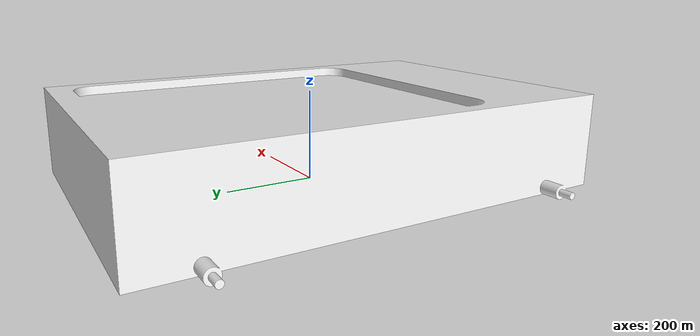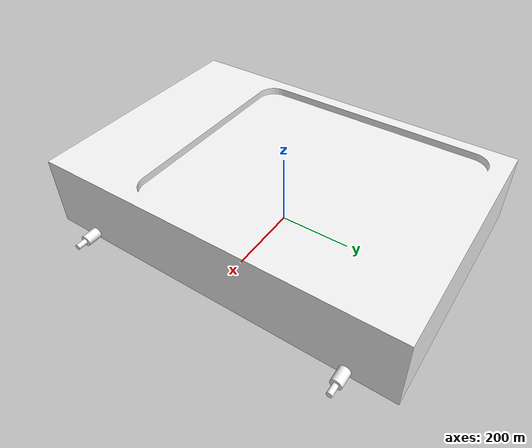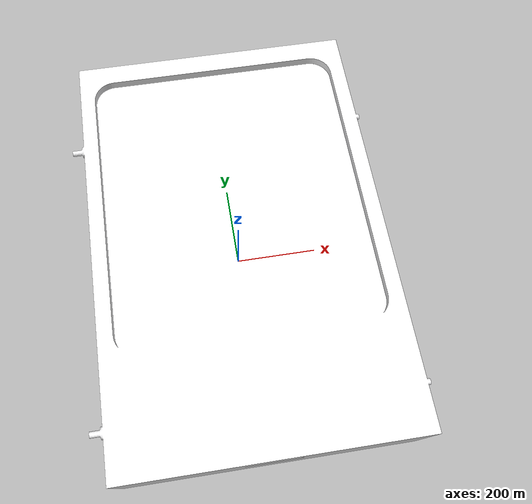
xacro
<?xml version="1.0" encoding="utf-8"?>
<robot name="mobile_robot" xmlns:xacro="http://ros.org/wiki/xacro">

  <xacro:include filename="$(find mobile_robot)/urdf/gazebo.xacro" />

  <link name="base_footprint" />
  <joint name="base_joint" type="fixed">
    <parent link="base_footprint" />
    <child link="base_link" />
    <origin rpy="0 0 -1.571" />
  </joint>
  <link
    name="base_link">
    <inertial>
      <origin
        xyz="-7.21353338584021E-05 0.053089226138797 0.0253124328907089"
        rpy="0 0 0" />
      <mass
        value="2.53586864209145" />
      <inertia
        ixx="0.0130988660125112"
        ixy="1.5439039788008E-08"
        ixz="-7.0245263255295E-06"
        iyy="0.0187432257323379"
        iyz="1.4171423681933E-06"
        izz="0.0068253762585396" />
    </inertial>
    <visual>
      <origin
        xyz="0 0 0"
        rpy="0 0 0" />
      <geometry>
        <mesh
          filename="package://mobile_robot/meshes/base_link.STL" />
      </geometry>
      <material
        name="">
        <color
          rgba="0.96078431372549 0.96078431372549 0.964705882352941 1" />
      </material>
    </visual>
    <collision>
      <origin
        xyz="0 0 0"
        rpy="0 0 0" />
      <geometry>
        <mesh
          filename="package://mobile_robot/meshes/base_link.STL" />
      </geometry>
    </collision>
  </link>
  <link
    name="fl_wheel">
    <inertial>
      <origin
        xyz="-0.035446536837034 -0.00945419469287452 -0.0350657249459968"
        rpy="0 0 0" />
      <mass
        value="0.209242205270652" />
      <inertia
        ixx="6.18813822893826E-05"
        ixy="1.00728808725636E-05"
        ixz="-4.2499966894806E-06"
        iyy="6.38594165349346E-05"
        iyz="-4.68734521554026E-06"
        izz="5.47268237519724E-05" />
    </inertial>
    <visual>
      <origin
        xyz="0 0 0"
        rpy="0 0 0" />
      <geometry>
        <mesh
          filename="package://mobile_robot/meshes/fl_wheel.STL" />
      </geometry>
      <material
        name="">
        <color
          rgba="0.152941176470588 0.152941176470588 0.152941176470588 1" />
      </material>
    </visual>
    <collision>
      <origin
        xyz="0 0 0"
        rpy="0 0 0" />
      <geometry>
        <mesh
          filename="package://mobile_robot/meshes/fl_wheel.STL" />
      </geometry>
    </collision>
  </link>
  <joint
    name="fl_joint"
    type="fixed">
    <origin
      xyz="-0.16241 0.18625 0.080068"
      rpy="-0.94821 -0.86247 -0.17082" />
    <parent
      link="base_link" />
    <child
      link="fl_wheel" />
    <axis
      xyz="0 0 0" />
  </joint>
  <link
    name="fr_wheel">
    <inertial>
      <origin
        xyz="-0.0121731912534891 0.00395386396752551 0.0258900875575578"
        rpy="0 0 0" />
      <mass
        value="0.209242205445262" />
      <inertia
        ixx="5.27492978645977E-05"
        ixy="-1.48332883054147E-10"
        ixz="6.88060983030131E-11"
        iyy="5.27489117610667E-05"
        iyz="1.88098980530649E-10"
        izz="7.49694134144625E-05" />
    </inertial>
    <visual>
      <origin
        xyz="0 0 0"
        rpy="0 0 0" />
      <geometry>
        <mesh
          filename="package://mobile_robot/meshes/fr_wheel.STL" />
      </geometry>
      <material
        name="black">
        <color
          rgba="0.96078431372549 0.96078431372549 0.964705882352941 1" />
      </material>
    </visual>
    <collision>
      <origin
        xyz="0 0 0"
        rpy="0 0 0" />
      <geometry>
        <mesh
          filename="package://mobile_robot/meshes/fr_wheel.STL" />
      </geometry>
    </collision>
  </link>
  <joint
    name="fr_joint"
    type="fixed">
    <origin
      xyz="0.20724 0.16719 0.048796"
      rpy="-1.5708 0 1.5708" />
    <parent
      link="base_link" />
    <child
      link="fr_wheel" />
    <axis
      xyz="0 0 0" />
  </joint>
  <link
    name="bl_wheel">
    <inertial>
      <origin
        xyz="-0.012173191130377 -0.0039538636153987 -0.0258900874668579"
        rpy="0 0 0" />
      <mass
        value="0.209242205270651" />
      <inertia
        ixx="5.27492981340793E-05"
        ixy="1.49043913486474E-10"
        ixz="-6.88056867799049E-11"
        iyy="5.27489112903855E-05"
        iyz="1.88177109413795E-10"
        izz="7.49694131518243E-05" />
    </inertial>
    <visual>
      <origin
        xyz="0 0 0"
        rpy="0 0 0" />
      <geometry>
        <mesh
          filename="package://mobile_robot/meshes/bl_wheel.STL" />
      </geometry>
      <material
        name="black">
      </material>
    </visual>
    <collision>
      <origin
        xyz="0 0 0"
        rpy="0 0 0" />
      <geometry>
        <mesh
          filename="package://mobile_robot/meshes/bl_wheel.STL" />
      </geometry>
    </collision>
  </link>
  <joint
    name="bl_joint"
    type="fixed">
    <origin
      xyz="-0.20724 -0.16716 0.048796"
      rpy="1.5708 0 -1.5708" />
    <parent
      link="base_link" />
    <child
      link="bl_wheel" />
    <axis
      xyz="0 0 0" />
  </joint>
  <link
    name="br_wheel">
    <inertial>
      <origin
        xyz="0.0132863573329233 0.0196855970551316 0.0307900875575582"
        rpy="0 0 0" />
      <mass
        value="0.209242205445262" />
      <inertia
        ixx="5.27488690365847E-05"
        ixy="-6.06728068393986E-11"
        ixz="-1.99230581583928E-10"
        iyy="5.27493405890799E-05"
        iyz="-2.05592111104188E-11"
        izz="7.49694134144627E-05" />
    </inertial>
    <visual>
      <origin
        xyz="0 0 0"
        rpy="0 0 0" />
      <geometry>
        <mesh
          filename="package://mobile_robot/meshes/br_wheel.STL" />
      </geometry>
      <material
        name="">
        <color
          rgba="0.768627450980392 0.772549019607843 0.768627450980392 1" />
      </material>
    </visual>
    <collision>
      <origin
        xyz="0 0 0"
        rpy="0 0 0" />
      <geometry>
        <mesh
          filename="package://mobile_robot/meshes/br_wheel.STL" />
      </geometry>
    </collision>
  </link>
  <joint
    name="br_joint"
    type="fixed">
    <origin
      xyz="0.21214 -0.16686 0.024274"
      rpy="1.5708 -1.1173 -1.5708" />
    <parent
      link="base_link" />
    <child
      link="br_wheel" />
    <axis
      xyz="0 0 0" />
  </joint>
  <link
    name="lidar">
    <inertial>
      <origin
        xyz="0.00615499275501901 0.0265025506034513 0.0115803179816844"
        rpy="-1.5708 0 2.02" />
      <mass
        value="0.0625978718920556" />
      <inertia
        ixx="2.03360596137219E-05"
        ixy="1.95242682743797E-07"
        ixz="-1.59529409623501E-06"
        iyy="3.56531824109386E-05"
        iyz="3.81877297208081E-07"
        izz="1.75442755220241E-05" />
    </inertial>
    <visual>
      <origin
        xyz="0 0 0"
        rpy="-1.5708 0 2.02" />
      <geometry>
        <mesh
          filename="package://mobile_robot/meshes/lidar.STL" />
      </geometry>
      <material
        name="">
        <color
          rgba="0.43921568627451 0.43921568627451 0.43921568627451 1" />
      </material>
    </visual>
    <collision>
      <origin
        xyz="0 0 0"
        rpy="-1.5708 0 2.02" />
      <geometry>
        <mesh
          filename="package://mobile_robot/meshes/lidar.STL" />
      </geometry>
    </collision>
  </link>
  <joint
    name="lidar_joint"
    type="fixed">
    <origin
      xyz="0 0.15432 0.12138"
      rpy="0 0 1.571" />
    <parent
      link="base_link" />
    <child
      link="lidar" />
    <axis
      xyz="0 0 0" />
  </joint>

</robot>
